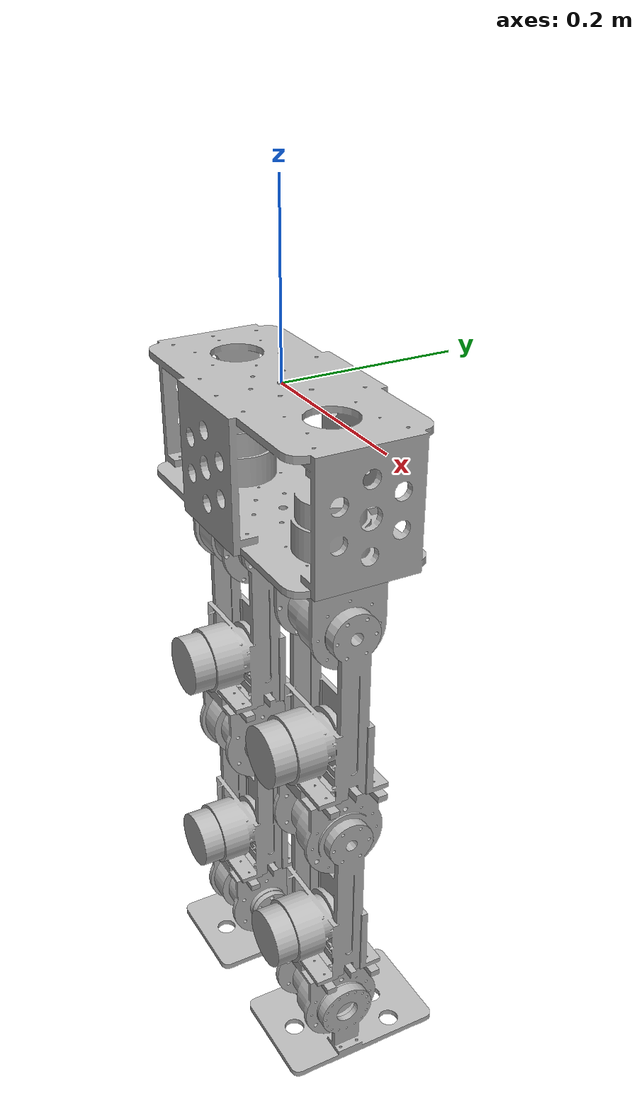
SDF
<sdf version='1.7'>
  <model name='bipedv5'>
    <link name='base_link'>
      <inertial>
        <pose>0 0 -0.088578 0 -0 0</pose>
        <mass>6.04</mass>
        <inertia>
          <ixx>0.011504</ixx>
          <ixy>1.2206e-11</ixy>
          <ixz>4.4303e-12</ixz>
          <iyy>0.026033</iyy>
          <iyz>-8.6187e-14</iyz>
          <izz>0.028285</izz>
        </inertia>
      </inertial>
      <collision name='base_link_collision'>
        <pose>0 0 -0.08 0 -0 0</pose>
        <geometry>
          <box>
            <size>0.35 0.15 0.15</size>
          </box>
        </geometry>
      </collision>
      <visual name='base_link_visual'>
        <pose>0 0 0 0 -0 0</pose>
        <geometry>
          <mesh>
            <scale>1 1 1</scale>
            <uri>model://bipedv5/meshes/base_link.STL</uri>
          </mesh>
        </geometry>
      </visual>
    </link>
    <joint name='ly' type='revolute'>
      <pose relative_to='base_link'>-0.1025 0 -0.162 0 -0 0</pose>
      <parent>base_link</parent>
      <child>left_yaw_Link</child>
      <axis>
        <xyz>0 0 1</xyz>
        <limit>
          <lower>-10</lower>
          <upper>10</upper>
          <effort>100</effort>
          <velocity>100</velocity>
        </limit>
        <dynamics>
          <spring_reference>0</spring_reference>
          <spring_stiffness>0</spring_stiffness>
        </dynamics>
      </axis>
    </joint>
    <link name='left_yaw_Link'>
      <pose relative_to='ly'>0 0 0 0 -0 0</pose>
      <inertial>
        <pose>-0.002268 -0 -0.043526 0 -0 0</pose>
        <mass>1.2202</mass>
        <inertia>
          <ixx>0.0010452</ixx>
          <ixy>-7.8902e-18</ixy>
          <ixz>3.289e-05</ixz>
          <iyy>0.0011182</iyy>
          <iyz>-2.6039e-18</iyz>
          <izz>0.0010959</izz>
        </inertia>
      </inertial>
      <collision name='left_yaw_Link_collision'>
        <pose>0 0 -0.007 0 -0 0</pose>
        <geometry>
          <box>
            <size>0.1 0.08 0.03</size>
          </box>
        </geometry>
      </collision>
      <visual name='left_yaw_Link_visual'>
        <pose>0 0 0 0 -0 0</pose>
        <geometry>
          <mesh>
            <scale>1 1 1</scale>
            <uri>model://bipedv5/meshes/left_yaw_Link.STL</uri>
          </mesh>
        </geometry>
      </visual>
    </link>
    <joint name='lh' type='revolute'>
      <pose relative_to='left_yaw_Link'>-0.0565 0 -0.054 0 -0 0</pose>
      <parent>left_yaw_Link</parent>
      <child>left_hip_Link</child>
      <axis>
        <xyz>-1 0 0</xyz>
        <limit>
          <lower>-10</lower>
          <upper>10</upper>
          <effort>100</effort>
          <velocity>100</velocity>
        </limit>
        <dynamics>
          <spring_reference>0</spring_reference>
          <spring_stiffness>0</spring_stiffness>
        </dynamics>
      </axis>
    </joint>
    <link name='left_hip_Link'>
      <pose relative_to='lh'>0 0 0 0 -0 0</pose>
      <inertial>
        <pose>0.055101 -0.022328 -0.14329 0 -0 0</pose>
        <mass>1.9263</mass>
        <inertia>
          <ixx>0.0027475</ixx>
          <ixy>1.6208e-11</ixy>
          <ixz>-2.5502e-05</ixz>
          <iyy>0.0033682</iyy>
          <iyz>8.3025e-07</iyz>
          <izz>0.0013004</izz>
        </inertia>
      </inertial>
      <collision name='left_hip_Link_collision'>
        <pose>0.055 0 -0.076 0 -0 0</pose>
        <geometry>
          <box>
            <size>0.12 0.06 0.206</size>
          </box>
        </geometry>
      </collision>
      <visual name='left_hip_Link_visual'>
        <pose>0 0 0 0 -0 0</pose>
        <geometry>
          <mesh>
            <scale>1 1 1</scale>
            <uri>model://bipedv5/meshes/left_hip_Link.STL</uri>
          </mesh>
        </geometry>
      </visual>
    </link>
    <joint name='lkp' type='prismatic'>
      <pose relative_to='left_hip_Link'>0.0565 0 -0.192 0 -0 0</pose>
      <parent>left_hip_Link</parent>
      <child>left_knee_pri_Link</child>
      <axis>
        <xyz>1 0 0</xyz>
        <limit>
          <lower>-0.1</lower>
          <upper>0.1</upper>
          <effort>100</effort>
          <velocity>100</velocity>
        </limit>
        <dynamics>
          <spring_reference>0</spring_reference>
          <spring_stiffness>0</spring_stiffness>
        </dynamics>
      </axis>
    </joint>
    <link name='left_knee_pri_Link'>
      <pose relative_to='lkp'>0 0 0 0 -0 0</pose>
      <inertial>
        <pose>-0.003862 0 -0.070547 0 -0 0</pose>
        <mass>1.7288</mass>
        <inertia>
          <ixx>0.0013015</ixx>
          <ixy>9.6218e-19</ixy>
          <ixz>4.5849e-05</ixz>
          <iyy>0.0013518</iyy>
          <iyz>-1.1668e-18</iyz>
          <izz>0.0012686</izz>
        </inertia>
      </inertial>
      <collision name='left_knee_pri_Link_collision'>
        <pose>0 0 -0.01 0 -0 0</pose>
        <geometry>
          <box>
            <size>0.14 0.06 0.04</size>
          </box>
        </geometry>
      </collision>
      <visual name='left_knee_pri_Link_visual'>
        <pose>0 0 0 0 -0 0</pose>
        <geometry>
          <mesh>
            <scale>1 1 1</scale>
            <uri>model://bipedv5/meshes/left_knee_pri_Link.STL</uri>
          </mesh>
        </geometry>
      </visual>
    </link>
    <joint name='lk' type='revolute'>
      <pose relative_to='left_knee_pri_Link'>-0.0565 0 -0.083 0 -0 0</pose>
      <parent>left_knee_pri_Link</parent>
      <child>left_knee_Link</child>
      <axis>
        <xyz>1 0 0</xyz>
        <limit>
          <lower>-10</lower>
          <upper>10</upper>
          <effort>100</effort>
          <velocity>100</velocity>
        </limit>
        <dynamics>
          <spring_reference>0</spring_reference>
          <spring_stiffness>0</spring_stiffness>
        </dynamics>
      </axis>
    </joint>
    <link name='left_knee_Link'>
      <pose relative_to='lk'>0 0 0 0 -0 0</pose>
      <inertial>
        <pose>0.055101 -0.022328 -0.14329 0 -0 0</pose>
        <mass>1.9263</mass>
        <inertia>
          <ixx>0.0027475</ixx>
          <ixy>1.6208e-11</ixy>
          <ixz>-2.5502e-05</ixz>
          <iyy>0.0033682</iyy>
          <iyz>8.3025e-07</iyz>
          <izz>0.0013004</izz>
        </inertia>
      </inertial>
      <collision name='left_knee_Link_collision'>
        <pose>0.055 0 -0.065 0 -0 0</pose>
        <geometry>
          <box>
            <size>0.12 0.06 0.23</size>
          </box>
        </geometry>
      </collision>
      <visual name='left_knee_Link_visual'>
        <pose>0 0 0 0 -0 0</pose>
        <geometry>
          <mesh>
            <scale>1 1 1</scale>
            <uri>model://bipedv5/meshes/left_knee_Link.STL</uri>
          </mesh>
        </geometry>
      </visual>
    </link>
    <joint name='lap' type='prismatic'>
      <pose relative_to='left_knee_Link'>0.0565 0 -0.192 0 -0 0</pose>
      <parent>left_knee_Link</parent>
      <child>left_ankle_pri_Link</child>
      <axis>
        <xyz>1 0 0</xyz>
        <limit>
          <lower>-0.1</lower>
          <upper>0.1</upper>
          <effort>100</effort>
          <velocity>100</velocity>
        </limit>
        <dynamics>
          <spring_reference>0</spring_reference>
          <spring_stiffness>0</spring_stiffness>
        </dynamics>
      </axis>
    </joint>
    <link name='left_ankle_pri_Link'>
      <pose relative_to='lap'>0 0 0 0 -0 0</pose>
      <inertial>
        <pose>-0.003862 0 -0.070547 0 -0 0</pose>
        <mass>1.7288</mass>
        <inertia>
          <ixx>0.0013015</ixx>
          <ixy>-5.5659e-19</ixy>
          <ixz>4.5849e-05</ixz>
          <iyy>0.0013518</iyy>
          <iyz>1.5099e-18</iyz>
          <izz>0.0012686</izz>
        </inertia>
      </inertial>
      <collision name='left_ankle_pri_Link_collision'>
        <pose>0 0 -0.06 0 -0 0</pose>
        <geometry>
          <box>
            <size>0.14 0.06 0.14</size>
          </box>
        </geometry>
      </collision>
      <visual name='left_ankle_pri_Link_visual'>
        <pose>0 0 0 0 -0 0</pose>
        <geometry>
          <mesh>
            <scale>1 1 1</scale>
            <uri>model://bipedv5/meshes/left_ankle_pri_Link.STL</uri>
          </mesh>
        </geometry>
      </visual>
    </link>
    <joint name='la' type='revolute'>
      <pose relative_to='left_ankle_pri_Link'>-0.0565 0 -0.083 0 -0 0</pose>
      <parent>left_ankle_pri_Link</parent>
      <child>left_ankle_Link</child>
      <axis>
        <xyz>1 0 0</xyz>
        <limit>
          <lower>-10</lower>
          <upper>10</upper>
          <effort>100</effort>
          <velocity>100</velocity>
        </limit>
        <dynamics>
          <spring_reference>0</spring_reference>
          <spring_stiffness>0</spring_stiffness>
        </dynamics>
      </axis>
    </joint>
    <link name='left_ankle_Link'>
      <pose relative_to='la'>0 0 0 0 -0 0</pose>
      <inertial>
        <pose>0.054123 0.015256 -0.051677 0 -0 0</pose>
        <mass>0.72668</mass>
        <inertia>
          <ixx>0.0020048</ixx>
          <ixy>-2.246e-18</ixy>
          <ixz>-7.9275e-07</ixz>
          <iyy>0.00089396</iyy>
          <iyz>-9.1373e-07</iyz>
          <izz>0.0027066</izz>
        </inertia>
      </inertial>
      <collision name='left_ankle_Link_collision'>
        <pose>0.055 0.02 -0.06 0 -0 0</pose>
        <geometry>
          <box>
            <size>0.14 0.22 0.01</size>
          </box>
        </geometry>
      </collision>
      <visual name='left_ankle_Link_visual'>
        <pose>0 0 0 0 -0 0</pose>
        <geometry>
          <mesh>
            <scale>1 1 1</scale>
            <uri>model://bipedv5/meshes/left_ankle_Link.STL</uri>
          </mesh>
        </geometry>
      </visual>
    </link>
    <joint name='ry' type='revolute'>
      <pose relative_to='base_link'>0.1025 0 -0.162 0 -0 0</pose>
      <parent>base_link</parent>
      <child>right_yaw_Link</child>
      <axis>
        <xyz>0 0 -1</xyz>
        <limit>
          <lower>-10</lower>
          <upper>10</upper>
          <effort>100</effort>
          <velocity>100</velocity>
        </limit>
        <dynamics>
          <spring_reference>0</spring_reference>
          <spring_stiffness>0</spring_stiffness>
        </dynamics>
      </axis>
    </joint>
    <link name='right_yaw_Link'>
      <pose relative_to='ry'>0 0 0 0 -0 0</pose>
      <inertial>
        <pose>0.002268 -0 -0.043526 0 -0 0</pose>
        <mass>1.2202</mass>
        <inertia>
          <ixx>0.0010452</ixx>
          <ixy>-2.0231e-18</ixy>
          <ixz>-3.289e-05</ixz>
          <iyy>0.0011182</iyy>
          <iyz>6.9424e-19</iyz>
          <izz>0.0010959</izz>
        </inertia>
      </inertial>
      <collision name='right_yaw_Link_collision'>
        <pose>0 0 -0.007 0 -0 0</pose>
        <geometry>
          <box>
            <size>0.1 0.08 0.03</size>
          </box>
        </geometry>
      </collision>
      <visual name='right_yaw_Link_visual'>
        <pose>0 0 0 0 -0 0</pose>
        <geometry>
          <mesh>
            <scale>1 1 1</scale>
            <uri>model://bipedv5/meshes/right_yaw_Link.STL</uri>
          </mesh>
        </geometry>
      </visual>
    </link>
    <joint name='rh' type='revolute'>
      <pose relative_to='right_yaw_Link'>0.0565 0 -0.054 0 -0 0</pose>
      <parent>right_yaw_Link</parent>
      <child>right_hip_Link</child>
      <axis>
        <xyz>-1 0 0</xyz>
        <limit>
          <lower>-10</lower>
          <upper>10</upper>
          <effort>100</effort>
          <velocity>100</velocity>
        </limit>
        <dynamics>
          <spring_reference>0</spring_reference>
          <spring_stiffness>0</spring_stiffness>
        </dynamics>
      </axis>
    </joint>
    <link name='right_hip_Link'>
      <pose relative_to='rh'>0 0 0 0 -0 0</pose>
      <inertial>
        <pose>-0.055101 -0.022328 -0.14329 0 -0 0</pose>
        <mass>1.9263</mass>
        <inertia>
          <ixx>0.0027475</ixx>
          <ixy>1.9779e-11</ixy>
          <ixz>2.5502e-05</ixz>
          <iyy>0.0033682</iyy>
          <iyz>8.3026e-07</iyz>
          <izz>0.0013004</izz>
        </inertia>
      </inertial>
      <collision name='right_hip_Link_collision'>
        <pose>-0.055 0 -0.078 0 -0 0</pose>
        <geometry>
          <box>
            <size>0.12 0.06 0.21</size>
          </box>
        </geometry>
      </collision>
      <visual name='right_hip_Link_visual'>
        <pose>0 0 0 0 -0 0</pose>
        <geometry>
          <mesh>
            <scale>1 1 1</scale>
            <uri>model://bipedv5/meshes/right_hip_Link.STL</uri>
          </mesh>
        </geometry>
      </visual>
    </link>
    <joint name='rkp' type='prismatic'>
      <pose relative_to='right_hip_Link'>-0.0565 0 -0.192 0 -0 0</pose>
      <parent>right_hip_Link</parent>
      <child>right_knee_pri_Link</child>
      <axis>
        <xyz>1 0 0</xyz>
        <limit>
          <lower>-0.1</lower>
          <upper>0.1</upper>
          <effort>100</effort>
          <velocity>100</velocity>
        </limit>
        <dynamics>
          <spring_reference>0</spring_reference>
          <spring_stiffness>0</spring_stiffness>
        </dynamics>
      </axis>
    </joint>
    <link name='right_knee_pri_Link'>
      <pose relative_to='rkp'>0 0 0 0 -0 0</pose>
      <inertial>
        <pose>0.003862 0 -0.070547 0 -0 0</pose>
        <mass>1.7288</mass>
        <inertia>
          <ixx>0.0013015</ixx>
          <ixy>6.3708e-19</ixy>
          <ixz>-4.5849e-05</ixz>
          <iyy>0.0013518</iyy>
          <iyz>2.0769e-18</iyz>
          <izz>0.0012686</izz>
        </inertia>
      </inertial>
      <collision name='right_knee_pri_Link_collision'>
        <pose>0 0 -0.043 0 -0 0</pose>
        <geometry>
          <box>
            <size>0.14 0.06 0.1</size>
          </box>
        </geometry>
      </collision>
      <visual name='right_knee_pri_Link_visual'>
        <pose>0 0 0 0 -0 0</pose>
        <geometry>
          <mesh>
            <scale>1 1 1</scale>
            <uri>model://bipedv5/meshes/right_knee_pri_Link.STL</uri>
          </mesh>
        </geometry>
      </visual>
    </link>
    <joint name='rk' type='revolute'>
      <pose relative_to='right_knee_pri_Link'>0.0565 0 -0.083 0 -0 0</pose>
      <parent>right_knee_pri_Link</parent>
      <child>right_knee_Link</child>
      <axis>
        <xyz>1 0 0</xyz>
        <limit>
          <lower>-10</lower>
          <upper>10</upper>
          <effort>100</effort>
          <velocity>100</velocity>
        </limit>
        <dynamics>
          <spring_reference>0</spring_reference>
          <spring_stiffness>0</spring_stiffness>
        </dynamics>
      </axis>
    </joint>
    <link name='right_knee_Link'>
      <pose relative_to='rk'>0 0 0 0 -0 0</pose>
      <inertial>
        <pose>-0.055101 -0.022328 -0.14329 0 -0 0</pose>
        <mass>1.9263</mass>
        <inertia>
          <ixx>0.0027475</ixx>
          <ixy>1.9779e-11</ixy>
          <ixz>2.5502e-05</ixz>
          <iyy>0.0033682</iyy>
          <iyz>8.3026e-07</iyz>
          <izz>0.0013004</izz>
        </inertia>
      </inertial>
      <collision name='right_knee_Link_collision'>
        <pose>-0.055 0 -0.097 0 -0 0</pose>
        <geometry>
          <box>
            <size>0.12 0.06 0.17</size>
          </box>
        </geometry>
      </collision>
      <visual name='right_knee_Link_visual'>
        <pose>0 0 0 0 -0 0</pose>
        <geometry>
          <mesh>
            <scale>1 1 1</scale>
            <uri>model://bipedv5/meshes/right_knee_Link.STL</uri>
          </mesh>
        </geometry>
      </visual>
    </link>
    <joint name='rap' type='prismatic'>
      <pose relative_to='right_knee_Link'>-0.0565 0 -0.192 0 -0 0</pose>
      <parent>right_knee_Link</parent>
      <child>right_ankle_pri_Link</child>
      <axis>
        <xyz>1 0 0</xyz>
        <limit>
          <lower>-0.1</lower>
          <upper>0.1</upper>
          <effort>100</effort>
          <velocity>100</velocity>
        </limit>
        <dynamics>
          <spring_reference>0</spring_reference>
          <spring_stiffness>0</spring_stiffness>
        </dynamics>
      </axis>
    </joint>
    <link name='right_ankle_pri_Link'>
      <pose relative_to='rap'>0 0 0 0 -0 0</pose>
      <inertial>
        <pose>0.003862 0 -0.070547 0 -0 0</pose>
        <mass>1.7288</mass>
        <inertia>
          <ixx>0.0013015</ixx>
          <ixy>5.2116e-19</ixy>
          <ixz>-4.5849e-05</ixz>
          <iyy>0.0013518</iyy>
          <iyz>2.0394e-18</iyz>
          <izz>0.0012686</izz>
        </inertia>
      </inertial>
      <collision name='right_ankle_pri_Link_collision'>
        <pose>0 0 -0.06 0 -0 0</pose>
        <geometry>
          <box>
            <size>0.14 0.06 0.14</size>
          </box>
        </geometry>
      </collision>
      <visual name='right_ankle_pri_Link_visual'>
        <pose>0 0 0 0 -0 0</pose>
        <geometry>
          <mesh>
            <scale>1 1 1</scale>
            <uri>model://bipedv5/meshes/right_ankle_pri_Link.STL</uri>
          </mesh>
        </geometry>
      </visual>
    </link>
    <joint name='ra' type='revolute'>
      <pose relative_to='right_ankle_pri_Link'>0.0565 0 -0.083 0 -0 0</pose>
      <parent>right_ankle_pri_Link</parent>
      <child>right_ankle_Link</child>
      <axis>
        <xyz>1 0 0</xyz>
        <limit>
          <lower>-10</lower>
          <upper>10</upper>
          <effort>100</effort>
          <velocity>100</velocity>
        </limit>
        <dynamics>
          <spring_reference>0</spring_reference>
          <spring_stiffness>0</spring_stiffness>
        </dynamics>
      </axis>
    </joint>
    <link name='right_ankle_Link'>
      <pose relative_to='ra'>0 0 0 0 -0 0</pose>
      <inertial>
        <pose>-0.054123 0.015256 -0.051677 0 -0 0</pose>
        <mass>0.72668</mass>
        <inertia>
          <ixx>0.0020048</ixx>
          <ixy>1.7327e-17</ixy>
          <ixz>7.9275e-07</ixz>
          <iyy>0.00089396</iyy>
          <iyz>-9.1373e-07</iyz>
          <izz>0.0027066</izz>
        </inertia>
      </inertial>
      <collision name='right_ankle_Link_collision'>
        <pose>-0.055 0.02 -0.06 0 -0 0</pose>
        <geometry>
          <box>
            <size>0.14 0.22 0.01</size>
          </box>
        </geometry>
      </collision>
      <visual name='right_ankle_Link_visual'>
        <pose>0 0 0 0 -0 0</pose>
        <geometry>
          <mesh>
            <scale>1 1 1</scale>
            <uri>model://bipedv5/meshes/right_ankle_Link.STL</uri>
          </mesh>
        </geometry>
      </visual>
    </link>
  </model>
</sdf>
